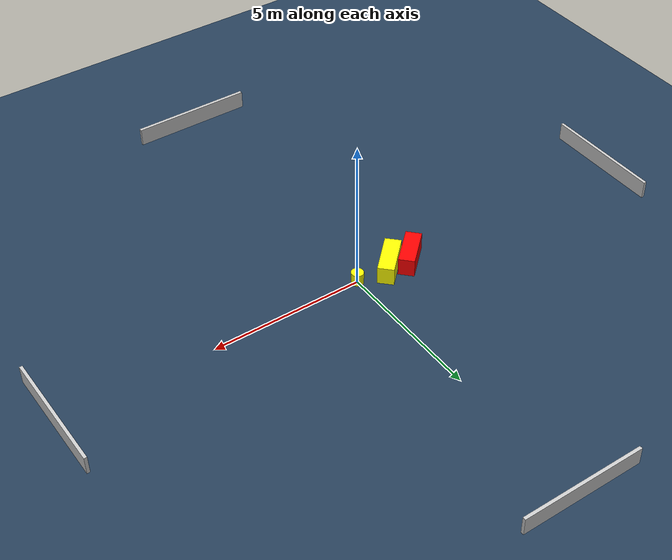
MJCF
<?xml version="1.0" ?>
<mujoco model="generated_environment">
  <option timestep="0.01" integrator="RK4" cone="elliptic"/>
  <default>
    <geom density="1"/>
  </default>
  <asset>
    <texture builtin="gradient" height="3072" name="skybox" rgb1="0.3 0.5 0.7" rgb2="0 0 0" type="skybox" width="512"/>
    <texture builtin="checker" height="300" name="groundplane" rgb1="0.2 0.3 0.4" rgb2="0.1 0.2 0.3" type="2d" width="300"/>
    <material name="groundplane" reflectance="0.2" texrepeat="5 5" texture="groundplane"/>
  </asset>
  <worldbody>
    <light dir="0 0 -1" directional="true" pos="0 0 1.5"/>
    <geom condim="3" friction="0.5 0.005 0.001" material="groundplane" name="floor" pos="0 0 0" size="0 0 0.05" type="plane"/>
    <body name="walls">
      <geom name="wall_1" condim="4" pos="-10.0 0.0 0.3" rgba="0.800000011920929 0.800000011920929 0.800000011920929 1.0" size="0.05 2.0 0.3" type="box"/>
      <geom name="wall_2" condim="4" pos="10.0 0.0 0.3" rgba="0.800000011920929 0.800000011920929 0.800000011920929 1.0" size="0.05 2.0 0.3" type="box"/>
      <geom name="wall_3" condim="4" pos="0.0 -10.0 0.3" rgba="0.800000011920929 0.800000011920929 0.800000011920929 1.0" size="2.0 0.05 0.3" type="box"/>
      <geom name="wall_4" condim="4" pos="0.0 10.0 0.3" rgba="0.800000011920929 0.800000011920929 0.800000011920929 1.0" size="2.0 0.05 0.3" type="box"/>
    </body>
    <body name="robot">
      <joint name="joint_x" type="slide" pos="0 0 0" axis="1 0 0"/>
      <joint name="joint_y" type="slide" pos="0 0 0" axis="0 1 0"/>
      <geom name="robot" type="cylinder" pos="0.0 0.0 0.2" size="0.2 0.2 0.0" mass="5.0" friction="1.0 0.005 0.0001" condim="4" rgba="1.0 1.0 0.0 1.0"/>
    </body>
    <body name="obstacle_1_movable">
      <geom name="obstacle_1_movable" condim="4" pos="-1.15063180044562 0.06516344096508933 0.3" euler="0 0 44.588897168655386" friction="0.0 0.005 0.001" rgba="1.0 1.0 0.0 1.0" size="0.7052283973426201 0.262042486986717 0.3" type="box" mass="0.1"/>
      <joint type="free"/>
    </body>
    <body name="obstacle_2_static">
      <geom name="obstacle_2_static" condim="4" pos="-1.8765201166822463 0.14126530309131016 0.3" euler="0 0 43.49198673587451" friction="0.0 0.005 0.001" rgba="1.0 0.0 0.0 1.0" size="0.670123248487608 0.2571278313563596 0.3" type="box"/>
    </body>
  </worldbody>
  <actuator>
    <motor name="actuator_x" joint="joint_x" gear="1" ctrlrange="-1 1"/>
    <motor name="actuator_y" joint="joint_y" gear="1" ctrlrange="-1 1"/>
  </actuator>
</mujoco>
